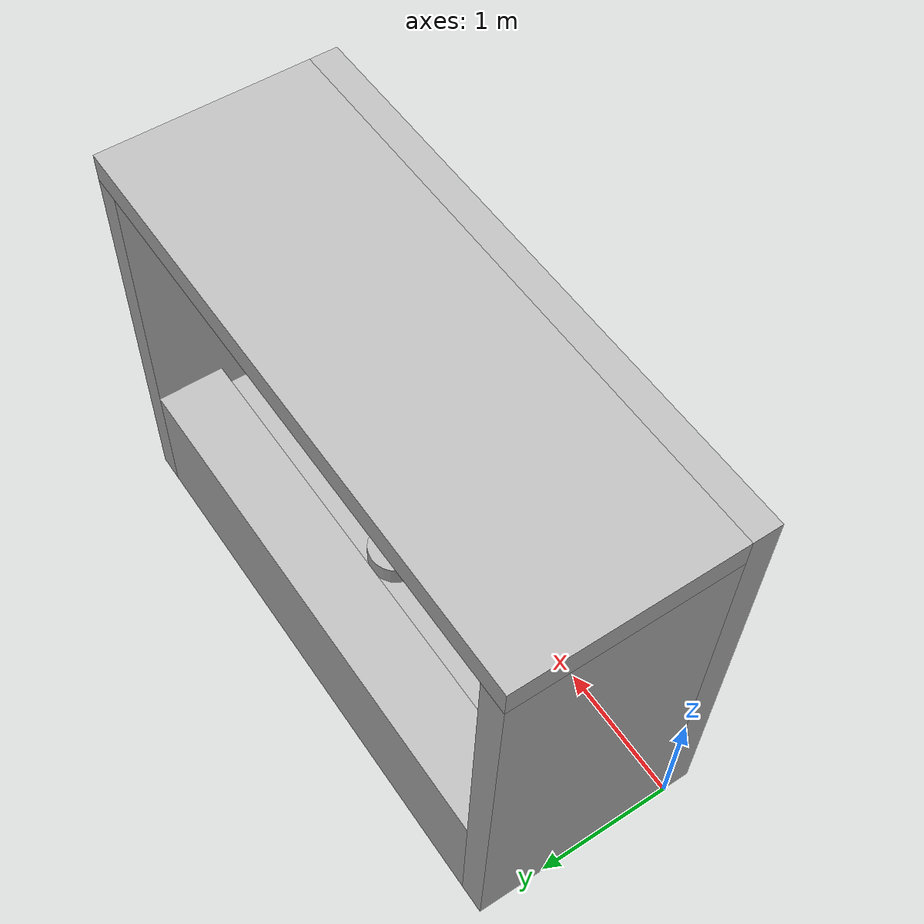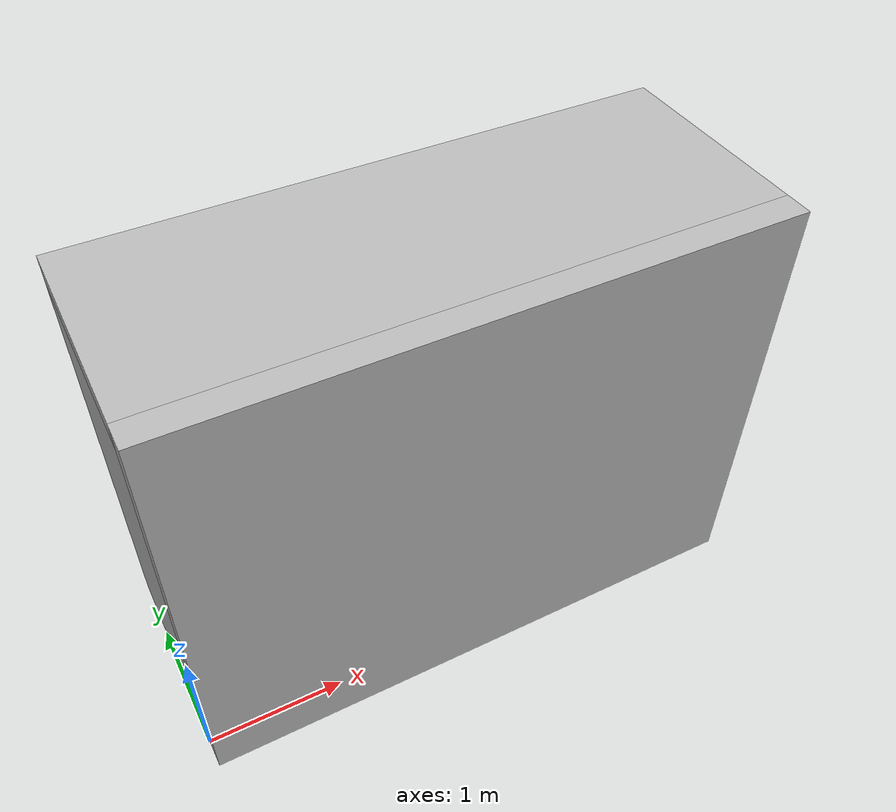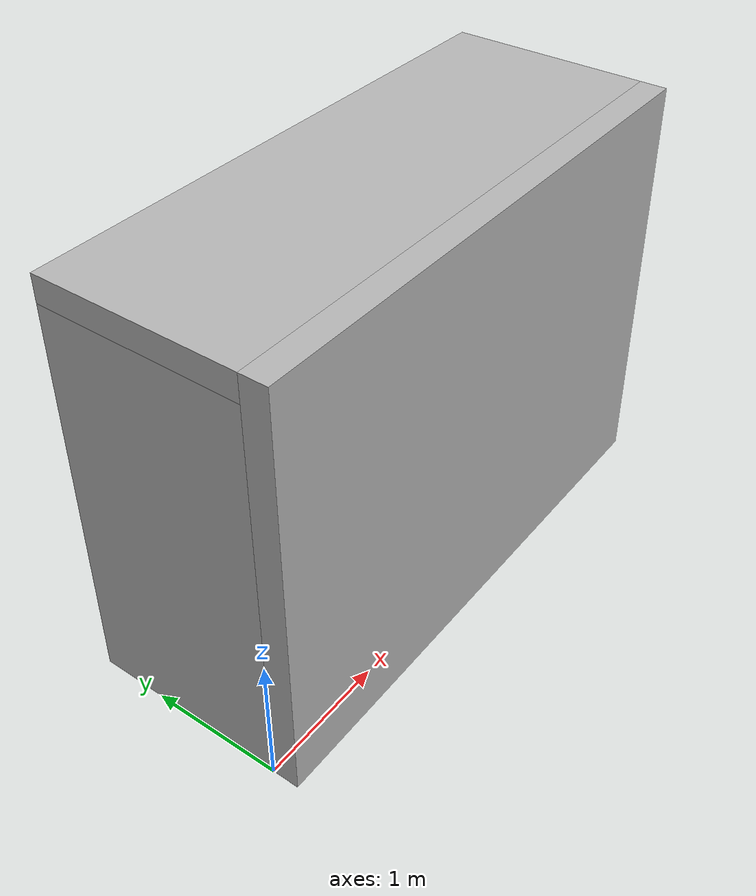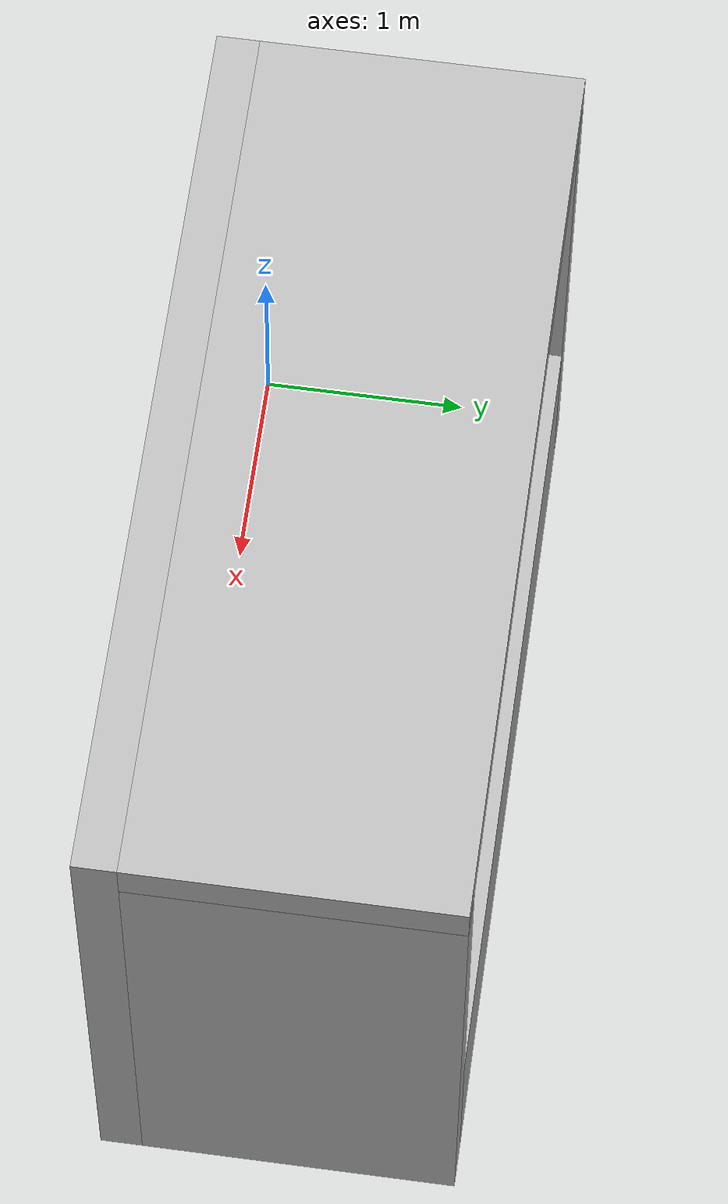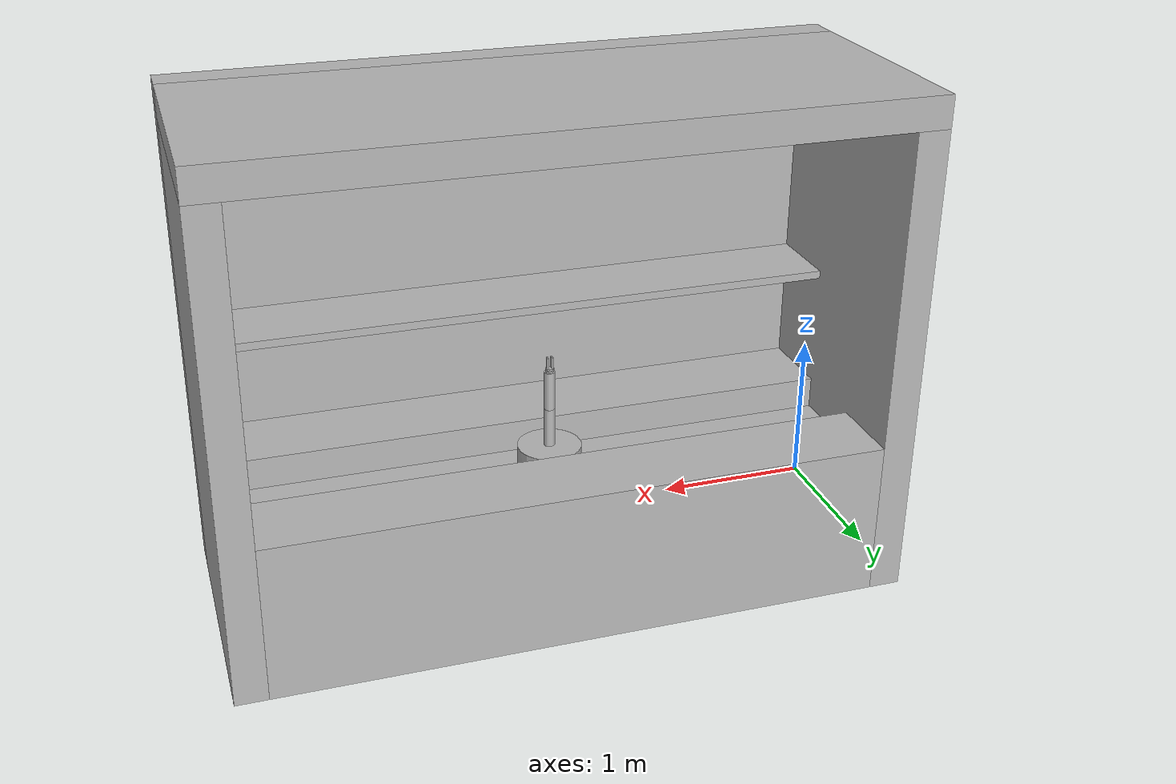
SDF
<?xml version="1.0" ?>
<sdf version="1.6">
	<model name="robot">
		<link name="back_wall">
			<pose>2.1 -0.1 1.6 0 0 0</pose>
			<inertial>
				<inertia>
					<ixx>3454.08000000</ixx>
					<iyy>9367.68000000</iyy>
					<izz>5940.48000000</izz>
				</inertia>
				<mass>4032.00000000</mass>
			</inertial>
			<visual name="back_wall_vis">
				<geometry>
					<box>
						<size>4.2 0.2 3.2</size>
					</box>
				</geometry>
			</visual>
			<collision name="back_wall_col">
				<geometry>
					<box>
						<size>4.2 0.2 3.2</size>
					</box>
				</geometry>
			</collision>
		</link>
		<link name="ceeling">
			<pose>2.1 0.75 3.1 0 0 0</pose>
			<inertial>
				<inertia>
					<ixx>360.67500000</ixx>
					<iyy>2784.60000000</iyy>
					<izz>3132.67500000</izz>
				</inertia>
				<mass>1890.00000000</mass>
			</inertial>
			<visual name="ceeling_vis">
				<geometry>
					<box>
						<size>4.2 1.5 0.2</size>
					</box>
				</geometry>
			</visual>
			<collision name="ceeling_col">
				<geometry>
					<box>
						<size>4.2 1.5 0.2</size>
					</box>
				</geometry>
			</collision>
		</link>
		<link name="left_wall">
			<pose>0.1 0.75 1.5 0 0 0</pose>
			<inertial>
				<inertia>
					<ixx>1265.62500000</ixx>
					<iyy>1017.00000000</iyy>
					<izz>257.62500000</izz>
				</inertia>
				<mass>1350.00000000</mass>
			</inertial>
			<visual name="left_wall_vis">
				<geometry>
					<box>
						<size>0.2 1.5 3</size>
					</box>
				</geometry>
			</visual>
			<collision name="left_wall_col">
				<geometry>
					<box>
						<size>0.2 1.5 3</size>
					</box>
				</geometry>
			</collision>
		</link>
		<link name="wright_wall">
			<pose>4.1000000000000005 0.75 1.5 0 0 0</pose>
			<inertial>
				<inertia>
					<ixx>1265.62500000</ixx>
					<iyy>1017.00000000</iyy>
					<izz>257.62500000</izz>
				</inertia>
				<mass>1350.00000000</mass>
			</inertial>
			<visual name="wright_wall_vis">
				<geometry>
					<box>
						<size>0.2 1.5 3</size>
					</box>
				</geometry>
			</visual>
			<collision name="wright_wall_col">
				<geometry>
					<box>
						<size>0.2 1.5 3</size>
					</box>
				</geometry>
			</collision>
		</link>
		<joint name="back_wall_to_ceeling_joint" type="fixed">
			<pose>0.0 -0.75 0.0 0 0 0</pose>
			<child>ceeling</child>
			<parent>back_wall</parent>
		</joint>
		<joint name="back_wall_to_left_wall_joint" type="fixed">
			<pose>0.0 -0.75 0.0 0 0 0</pose>
			<child>left_wall</child>
			<parent>back_wall</parent>
		</joint>
		<joint name="back_wall_to_wright_wall_joint" type="fixed">
			<pose>0.0 -0.75 0.0 0 0 0</pose>
			<child>wright_wall</child>
			<parent>back_wall</parent>
		</joint>
		<link name="back_cabinet">
			<pose>2.1 0.25 0.5 0 0 0</pose>
			<inertial>
				<inertia>
					<ixx>0.11875000</ixx>
					<iyy>1.46680000</iyy>
					<izz>1.39555000</izz>
				</inertia>
				<mass>1.14000000</mass>
			</inertial>
			<visual name="back_cabinet_vis">
				<geometry>
					<box>
						<size>3.8000000000000003 0.5 1.0</size>
					</box>
				</geometry>
			</visual>
			<collision name="back_cabinet_col">
				<geometry>
					<box>
						<size>3.8000000000000003 0.5 1.0</size>
					</box>
				</geometry>
			</collision>
		</link>
		<link name="front_cabinet">
			<pose>2.1 1.25 0.5 0 0 0</pose>
			<inertial>
				<inertia>
					<ixx>0.11875000</ixx>
					<iyy>1.46680000</iyy>
					<izz>1.39555000</izz>
				</inertia>
				<mass>1.14000000</mass>
			</inertial>
			<visual name="front_cabinet_vis">
				<geometry>
					<box>
						<size>3.8000000000000003 0.5 1.0</size>
					</box>
				</geometry>
			</visual>
			<collision name="front_cabinet_col">
				<geometry>
					<box>
						<size>3.8000000000000003 0.5 1.0</size>
					</box>
				</geometry>
			</collision>
		</link>
		<link name="top_cabinet">
			<pose>2.1 0.25 1.75 0 0 0</pose>
			<inertial>
				<inertia>
					<ixx>0.00119938</ixx>
					<iyy>0.06860188</iyy>
					<izz>0.06977750</izz>
				</inertia>
				<mass>0.05700000</mass>
			</inertial>
			<visual name="top_cabinet_vis">
				<geometry>
					<box>
						<size>3.8000000000000003 0.5 0.05</size>
					</box>
				</geometry>
			</visual>
			<collision name="top_cabinet_col">
				<geometry>
					<box>
						<size>3.8000000000000003 0.5 0.05</size>
					</box>
				</geometry>
			</collision>
		</link>
		<link name="robot_carrier">
			<pose>2.1 0.75 0.4 0 0 0</pose>
			<inertial>
				<inertia>
					<ixx>0.06764000</ixx>
					<iyy>1.14608000</iyy>
					<izz>1.11644000</izz>
				</inertia>
				<mass>0.91200000</mass>
			</inertial>
			<visual name="robot_carrier_vis">
				<geometry>
					<box>
						<size>3.8000000000000003 0.5 0.8</size>
					</box>
				</geometry>
			</visual>
			<collision name="robot_carrier_col">
				<geometry>
					<box>
						<size>3.8000000000000003 0.5 0.8</size>
					</box>
				</geometry>
			</collision>
		</link>
		<joint name="back_wall_to_back_cabinet_joint" type="fixed">
			<pose>0.0 -0.25 0.0 0 0 0</pose>
			<child>back_cabinet</child>
			<parent>back_wall</parent>
		</joint>
		<joint name="back_wall_to_top_cabinet_joint" type="fixed">
			<pose>0.0 -0.25 0.0 0 0 0</pose>
			<child>top_cabinet</child>
			<parent>back_wall</parent>
		</joint>
		<joint name="back_cabinet_to_robot_carrier_joint" type="fixed">
			<pose>0.0 -0.25 0.0 0 0 0</pose>
			<child>robot_carrier</child>
			<parent>back_cabinet</parent>
		</joint>
		<joint name="robot_carrier_to_front_cabinet_joint" type="fixed">
			<pose>0.0 -0.25 0.0 0 0 0</pose>
			<child>front_cabinet</child>
			<parent>robot_carrier</parent>
		</joint>
		<link name="arm_base">
			<pose>2.1 0.75 0.85 0 0 0</pose>
			<inertial>
				<inertia>
					<ixx>0.00030829</ixx>
					<iyy>0.00030829</iyy>
					<izz>0.00046244</izz>
				</inertia>
				<mass>0.02312212</mass>
			</inertial>
			<visual name="arm_base_vis">
				<geometry>
					<cylinder>
						<radius>0.2</radius>
						<length>0.2</length>
					</cylinder>
				</geometry>
			</visual>
			<collision name="arm_base_col">
				<geometry>
					<cylinder>
						<radius>0.2</radius>
						<length>0.2</length>
					</cylinder>
				</geometry>
			</collision>
		</link>
		<link name="arm">
			<pose>2.1 0.75 1.075 0 0 0</pose>
			<inertial>
				<inertia>
					<ixx>0.00000440</ixx>
					<iyy>0.00000440</iyy>
					<izz>0.00000045</izz>
				</inertia>
				<mass>0.00080285</mass>
			</inertial>
			<visual name="arm_vis">
				<geometry>
					<cylinder>
						<radius>0.03333333333333333</radius>
						<length>0.25</length>
					</cylinder>
				</geometry>
			</visual>
			<collision name="arm_col">
				<geometry>
					<cylinder>
						<radius>0.03333333333333333</radius>
						<length>0.25</length>
					</cylinder>
				</geometry>
			</collision>
		</link>
		<link name="arm_rotetor">
			<pose>2.1 0.75 1.325 0 0 0</pose>
			<inertial>
				<inertia>
					<ixx>0.00000440</ixx>
					<iyy>0.00000440</iyy>
					<izz>0.00000045</izz>
				</inertia>
				<mass>0.00080285</mass>
			</inertial>
			<visual name="arm_rotetor_vis">
				<geometry>
					<cylinder>
						<radius>0.03333333333333333</radius>
						<length>0.25</length>
					</cylinder>
				</geometry>
			</visual>
			<collision name="arm_rotetor_col">
				<geometry>
					<cylinder>
						<radius>0.03333333333333333</radius>
						<length>0.25</length>
					</cylinder>
				</geometry>
			</collision>
		</link>
		<joint name="robot_carrier_to_arm_base_joint" type="prismatic">
			<pose>0 0 -0.1 0 0 0</pose>
			<child>arm_base</child>
			<parent>robot_carrier</parent>
			<axis>
				<xyz>1 0 0</xyz>
				<dynamics>
					<friction>0.05</friction>
					<damping>0.03</damping>
				</dynamics>
				<limit>
					<upper>1.6</upper>
					<lower>-1.6</lower>
				</limit>
			</axis>
		</joint>
		<joint name="arm_base_to_arm_joint" type="prismatic">
			<pose>0 0 -0.125 0 0 0</pose>
			<child>arm</child>
			<parent>arm_base</parent>
			<axis>
				<xyz>0 0 1</xyz>
				<dynamics>
					<friction>0.05</friction>
					<damping>0.03</damping>
				</dynamics>
				<limit>
					<upper>1.6</upper>
					<lower>-1.6</lower>
				</limit>
			</axis>
		</joint>
		<joint name="arm_to_arm_rotetor_joint" type="revolute">
			<pose>0 0 -0.125 0 0 0</pose>
			<child>arm_rotetor</child>
			<parent>arm</parent>
			<axis>
				<xyz>1 0 0</xyz>
				<dynamics>
					<friction>0.05</friction>
					<damping>0.03</damping>
				</dynamics>
				<limit>
					<upper>3.141592653589793</upper>
					<lower>-3.141592653589793</lower>
				</limit>
			</axis>
		</joint>
		<link name="wrist_rx">
			<pose>2.1 0.75 1.4541666666666666 0 0 0</pose>
			<inertial>
				<inertia>
					<ixx>0.00000000</ixx>
					<iyy>0.00000000</iyy>
					<izz>0.00000001</izz>
				</inertia>
				<mass>0.00001713</mass>
			</inertial>
			<visual name="wrist_rx_vis">
				<geometry>
					<cylinder>
						<radius>0.026666666666666665</radius>
						<length>0.008333333333333333</length>
					</cylinder>
				</geometry>
			</visual>
			<collision name="wrist_rx_col">
				<geometry>
					<cylinder>
						<radius>0.026666666666666665</radius>
						<length>0.008333333333333333</length>
					</cylinder>
				</geometry>
			</collision>
		</link>
		<link name="wrist_ry">
			<pose>2.1 0.75 1.4625 0 0 0</pose>
			<inertial>
				<inertia>
					<ixx>0.00000000</ixx>
					<iyy>0.00000000</iyy>
					<izz>0.00000001</izz>
				</inertia>
				<mass>0.00001713</mass>
			</inertial>
			<visual name="wrist_ry_vis">
				<geometry>
					<cylinder>
						<radius>0.026666666666666665</radius>
						<length>0.008333333333333333</length>
					</cylinder>
				</geometry>
			</visual>
			<collision name="wrist_ry_col">
				<geometry>
					<cylinder>
						<radius>0.026666666666666665</radius>
						<length>0.008333333333333333</length>
					</cylinder>
				</geometry>
			</collision>
		</link>
		<link name="wrist_rz">
			<pose>2.1 0.75 1.4708333333333332 0 0 0</pose>
			<inertial>
				<inertia>
					<ixx>0.00000000</ixx>
					<iyy>0.00000000</iyy>
					<izz>0.00000001</izz>
				</inertia>
				<mass>0.00001713</mass>
			</inertial>
			<visual name="wrist_rz_vis">
				<geometry>
					<cylinder>
						<radius>0.026666666666666665</radius>
						<length>0.008333333333333333</length>
					</cylinder>
				</geometry>
			</visual>
			<collision name="wrist_rz_col">
				<geometry>
					<cylinder>
						<radius>0.026666666666666665</radius>
						<length>0.008333333333333333</length>
					</cylinder>
				</geometry>
			</collision>
		</link>
		<link name="finger1">
			<pose>2.0856770833333336 0.75 1.5041666666666667 0 0 0</pose>
			<inertial>
				<inertia>
					<ixx>0.00000001</ixx>
					<iyy>0.00000001</iyy>
					<izz>0.00000000</izz>
				</inertia>
				<mass>0.00001872</mass>
			</inertial>
			<visual name="finger1_vis">
				<geometry>
					<box>
						<size>0.0078125 0.03125 0.08333333333333333</size>
					</box>
				</geometry>
			</visual>
			<collision name="finger1_col">
				<geometry>
					<box>
						<size>0.0078125 0.03125 0.08333333333333333</size>
					</box>
				</geometry>
			</collision>
			<sensor name="finger1_sensor" type="contact">
				<contact>
					<collision>finger1_col</collision>
				</contact>
				<always_on>1</always_on>
				<update_rate>30</update_rate>
				<visualize>true</visualize>
				<plugin filename="libfinger_contact.so" name="my_plugin"/>
			</sensor>
		</link>
		<link name="finger2">
			<pose>2.1143229166666666 0.75 1.5041666666666667 0 0 0</pose>
			<inertial>
				<inertia>
					<ixx>0.00000001</ixx>
					<iyy>0.00000001</iyy>
					<izz>0.00000000</izz>
				</inertia>
				<mass>0.00001872</mass>
			</inertial>
			<visual name="finger2_vis">
				<geometry>
					<box>
						<size>0.0078125 0.03125 0.08333333333333333</size>
					</box>
				</geometry>
			</visual>
			<collision name="finger2_col">
				<geometry>
					<box>
						<size>0.0078125 0.03125 0.08333333333333333</size>
					</box>
				</geometry>
			</collision>
			<sensor name="finger2_sensor" type="contact">
				<contact>
					<collision>finger2_col</collision>
				</contact>
				<always_on>1</always_on>
				<update_rate>30</update_rate>
				<visualize>true</visualize>
				<plugin filename="libfinger_contact.so" name="my_plugin"/>
			</sensor>
		</link>
		<joint name="arm_rotetor_to_wrist_rx_joint" type="revolute">
			<pose>0 0 -0.004166666666666667 0 0 0</pose>
			<child>wrist_rx</child>
			<parent>arm_rotetor</parent>
			<axis>
				<xyz>0 0 1</xyz>
				<dynamics>
					<friction>0.05</friction>
					<damping>0.03</damping>
				</dynamics>
				<limit>
					<upper>3.141592653589793</upper>
					<lower>-3.141592653589793</lower>
				</limit>
			</axis>
		</joint>
		<joint name="wrist_rx_to_wrist_ry_joint" type="revolute">
			<pose>0 0 -0.004166666666666667 0 0 0</pose>
			<child>wrist_ry</child>
			<parent>wrist_rx</parent>
			<axis>
				<xyz>0 0 1</xyz>
				<dynamics>
					<friction>0.05</friction>
					<damping>0.03</damping>
				</dynamics>
				<limit>
					<upper>3.141592653589793</upper>
					<lower>-3.141592653589793</lower>
				</limit>
			</axis>
		</joint>
		<joint name="wrist_ry_to_wrist_rz_joint" type="revolute">
			<pose>0 0 -0.004166666666666667 0 0 0</pose>
			<child>wrist_rz</child>
			<parent>wrist_ry</parent>
			<axis>
				<xyz>0 0 1</xyz>
				<dynamics>
					<friction>0.05</friction>
					<damping>0.03</damping>
				</dynamics>
				<limit>
					<upper>3.141592653589793</upper>
					<lower>-3.141592653589793</lower>
				</limit>
			</axis>
		</joint>
		<joint name="wrist_rz_to_finger1_joint" type="revolute">
			<pose>0 0 -0.041666666666666664 0 0 0</pose>
			<child>finger1</child>
			<parent>wrist_rz</parent>
			<axis>
				<xyz>0 1 0</xyz>
				<dynamics>
					<friction>0.05</friction>
					<damping>0.03</damping>
				</dynamics>
				<limit>
					<upper>1.5707963267948966</upper>
					<lower>-1.5707963267948966</lower>
				</limit>
			</axis>
		</joint>
		<joint name="wrist_rz_to_finger2_joint" type="revolute">
			<pose>0 0 -0.041666666666666664 0 0 0</pose>
			<child>finger2</child>
			<parent>wrist_rz</parent>
			<axis>
				<xyz>0 1 0</xyz>
				<dynamics>
					<friction>0.05</friction>
					<damping>0.03</damping>
				</dynamics>
				<limit>
					<upper>1.5707963267948966</upper>
					<lower>-1.5707963267948966</lower>
				</limit>
			</axis>
		</joint>
		<plugin filename="libarm_controller.so" name="arm_controller"/>
		<plugin filename="libgripper_controller.so" name="gripper_controller"/>
	</model>
</sdf>
